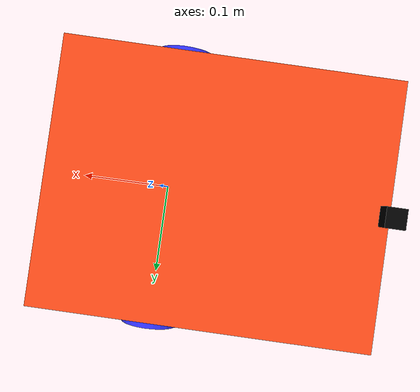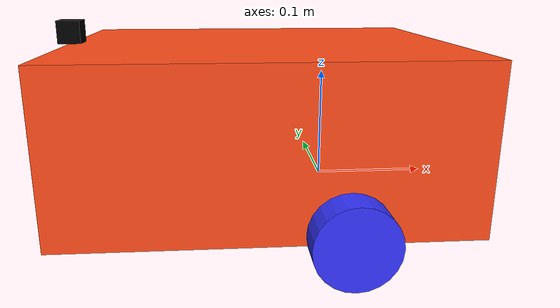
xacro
<?xml version="1.0"?>
<robot xmlns:xacro="http://www.ros.org/wiki/xacro">

    <xacro:include filename="inertial_macros.xacro"/>

    <xacro:property name="chassis_length" value="0.335"/>
    <xacro:property name="chassis_width" value="0.265"/>
    <xacro:property name="chassis_height" value="0.138"/>
    <xacro:property name="chassis_mass" value="1.0"/>
    <xacro:property name="wheel_radius" value="0.033"/>
    <xacro:property name="wheel_thickness" value="0.026"/>
    <xacro:property name="wheel_mass" value="0.05"/>
    <xacro:property name="wheel_offset_x" value="0.226"/>
    <xacro:property name="wheel_offset_y" value="0.1485"/>
    <xacro:property name="wheel_offset_z" value="0.01"/>
    <xacro:property name="caster_wheel_radius" value="0.01"/>
    <xacro:property name="caster_wheel_mass" value="0.01"/>
    <xacro:property name="caster_wheel_offset_x" value="0.075"/>
    <xacro:property name="caster_wheel_offset_z" value="${wheel_offset_z - wheel_radius + caster_wheel_radius}"/>

    <material name="white">
        <color rgba="1 1 1 1" />
    </material>

    <material name="orange">
        <color rgba="1 0.3 0.1 1"/>
    </material>

    <material name="blue">
        <color rgba="0.2 0.2 1 1"/>
    </material>

    <material name="black">
        <color rgba="0 0 0 1"/>
    </material>

    <material name="red">
        <color rgba="1 0 0 1"/>
    </material>

    <!-- BASE LINK -->

    <link name="base_link">

    </link>

    <!-- BASE_FOOTPRINT LINK -->

    <joint name="base_footprint_joint" type="fixed">
        <parent link="base_link"/>
        <child link="base_footprint"/>
        <origin xyz="0 0 0" rpy="0 0 0"/>
    </joint>

    <link name="base_footprint">
    </link>

    <!-- CHASSIS LINK -->

    <joint name="chassis_joint" type="fixed">
        <parent link="base_link"/>
        <child link="chassis"/>
        <origin xyz="${-wheel_offset_x} 0 ${-wheel_offset_z}"/>
    </joint>

    <link name="chassis">
        <visual>
            <origin xyz="${chassis_length/2} 0 ${chassis_height/2}"/>
            <geometry>
                <box size="${chassis_length} ${chassis_width} ${chassis_height}"/>
            </geometry>
            <material name="orange"/>
        </visual>
        <collision>
            <origin xyz="${chassis_length/2} 0 ${chassis_height/2}"/>
            <geometry>
                <box size="${chassis_length} ${chassis_width} ${chassis_height}"/>
            </geometry>
        </collision>
        <xacro:inertial_box mass="0.5" x="${chassis_length}" y="${chassis_width}" z="${chassis_height}">
            <origin xyz="${chassis_length/2} 0 ${chassis_height/2}" rpy="0 0 0"/>
        </xacro:inertial_box>
    </link>

    <gazebo reference="chassis">
        <material>Gazebo/Orange</material>
    </gazebo>

    <!-- IMU LINK -->
    <joint name="imu_joint" type="fixed">
        <parent link="chassis"/>
        <child link="imu_link"/>
        <origin xyz="0 0 0.148" rpy="0 0 0"/>
    </joint>

    <gazebo reference="imu_joint">
        <disableFixedJointLumping>true</disableFixedJointLumping>
    </gazebo>

    <link name="imu_link">
        <visual>
            <geometry>
                <box size="0.02 0.02 0.02"/>
            </geometry>
            <material name="black"/>
        </visual>
        <collision>
            <geometry>
                <box size="0.02 0.02 0.02"/>
            </geometry>
        </collision>
        <xacro:inertial_box mass="0.01" x="0.02" y="0.02" z="0.02">
            <origin xyz="0 0 0" rpy="0 0 0"/>
        </xacro:inertial_box>
    </link>

    <gazebo reference="imu_link">
        <material>Gazebo/Black</material>
        <sensor name="imu_sensor" type="imu">
            <always_on>true</always_on>
            <update_rate>50</update_rate>
            <visualize>false</visualize>
            <imu>
                <angular_velocity>
                    <x>
                        <noise type="gaussian">
                            <mean>0.0</mean>
                            <stddev>0.0002</stddev>
                            <bias_mean>0.0000075</bias_mean>
                            <bias_stddev>0.0000008</bias_stddev>
                        </noise>
                    </x>
                    <y>
                        <noise type="gaussian">
                            <mean>0.0</mean>
                            <stddev>0.0002</stddev>
                            <bias_mean>0.0000075</bias_mean>
                            <bias_stddev>0.0000008</bias_stddev>
                        </noise>
                    </y>
                    <z>
                        <noise type="gaussian">
                            <mean>0.0</mean>
                            <stddev>0.0002</stddev>
                            <bias_mean>0.0000075</bias_mean>
                            <bias_stddev>0.0000008</bias_stddev>
                        </noise>
                    </z>
                </angular_velocity>
                <linear_acceleration>
                    <x>
                        <noise type="gaussian">
                            <mean>0.0</mean>
                            <stddev>0.017</stddev>
                            <bias_mean>0.1</bias_mean>
                            <bias_stddev>0.001</bias_stddev>
                        </noise>
                    </x>
                    <y>
                        <noise type="gaussian">
                            <mean>0.0</mean>
                            <stddev>0.017</stddev>
                            <bias_mean>0.1</bias_mean>
                            <bias_stddev>0.001</bias_stddev>
                        </noise>
                    </y>
                    <z>
                        <noise type="gaussian">
                            <mean>0.0</mean>
                            <stddev>0.017</stddev>
                            <bias_mean>0.1</bias_mean>
                            <bias_stddev>0.001</bias_stddev>
                        </noise>
                    </z>
                </linear_acceleration>
            </imu>
            <xacro:if value="$(arg use_gazebo_classic)">
                <plugin name="imu_plugin" filename="libgazebo_ros_imu_sensor.so">
                    <ros>
                        <remapping>~/out:=imu/data</remapping>
                    </ros>
                    <initial_orientation_as_reference>false</initial_orientation_as_reference>
                </plugin>
            </xacro:if>
            <xacro:unless value="$(arg use_gazebo_classic)">
                <topic>imu_sensor/imu_data</topic>
            </xacro:unless>
        </sensor>
    </gazebo>

    <!-- LEFT WHEEL LINK -->

    <joint name="left_wheel_joint" type="continuous">
        <parent link="base_link"/>
        <child link="left_wheel"/>
        <origin xyz="0 ${wheel_offset_y} 0" rpy="-${pi/2} 0 0" />
        <axis xyz="0 0 1"/>
    </joint>

    <link name="left_wheel">
        <visual>
            <geometry>
                <cylinder radius="${wheel_radius}" length="${wheel_thickness}"/>
            </geometry>
            <material name="blue"/>
        </visual>
        <collision>
            <geometry>
                <sphere radius="${wheel_radius}"/>
            </geometry>
        </collision>
        <xacro:inertial_cylinder mass="${wheel_mass}" length="${wheel_thickness}" radius="${wheel_radius}">
            <origin xyz="0 0 0" rpy="0 0 0"/>
        </xacro:inertial_cylinder>
    </link>

    <gazebo reference="left_wheel">
        <material>Gazebo/Blue</material>
    </gazebo>

    <!-- RIGHT WHEEL LINK -->

    <joint name="right_wheel_joint" type="continuous">
        <parent link="base_link"/>
        <child link="right_wheel"/>
        <origin xyz="0 ${-wheel_offset_y} 0" rpy="${pi/2} 0 0" />
        <axis xyz="0 0 -1"/>
    </joint>

    <link name="right_wheel">
        <visual>
            <geometry>
                <cylinder radius="${wheel_radius}" length="${wheel_thickness}"/>
            </geometry>
            <material name="blue"/>
        </visual>
        <collision>
            <geometry>
                <sphere radius="${wheel_radius}"/>
            </geometry>
        </collision>
        <xacro:inertial_cylinder mass="${wheel_mass}" length="${wheel_thickness}" radius="${wheel_radius}">
            <origin xyz="0 0 0" rpy="0 0 0"/>
        </xacro:inertial_cylinder>
    </link>

    <gazebo reference="right_wheel">
        <material>Gazebo/Blue</material>
    </gazebo>

    <!-- CASTER WHEEL LINK -->

    <joint name="caster_wheel_joint" type="fixed">
        <parent link="chassis"/>
        <child link="caster_wheel"/>
        <origin xyz="${caster_wheel_offset_x} 0 ${caster_wheel_offset_z}"/>
    </joint>

    <link name="caster_wheel">
        <visual>
            <geometry>
                <sphere radius="${caster_wheel_radius}"/>
            </geometry>
            <material name="white"/>
        </visual>
        <collision>
            <geometry>
                <sphere radius="${caster_wheel_radius}"/>
            </geometry>
        </collision>
        <xacro:inertial_sphere mass="${caster_wheel_mass}" radius="${caster_wheel_radius}">
            <origin xyz="0 0 0" rpy="0 0 0"/>
        </xacro:inertial_sphere>
    </link>

    <gazebo reference="caster_wheel">
        <material>Gazebo/White</material>
        <mu1 value="0.001"/>
        <mu2 value="0.001"/>
    </gazebo>

</robot>

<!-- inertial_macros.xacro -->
<robot xmlns:xacro="http://www.ros.org/wiki/xacro" >
    <xacro:macro name="inertial_sphere" params="mass radius *origin">
        <inertial>
            <xacro:insert_block name="origin"/>
            <mass value="${mass}" />
            <inertia ixx="${(2/5) * mass * (radius*radius)}" ixy="0.0" ixz="0.0"
                    iyy="${(2/5) * mass * (radius*radius)}" iyz="0.0"
                    izz="${(2/5) * mass * (radius*radius)}" />
        </inertial>
    </xacro:macro>
    <xacro:macro name="inertial_box" params="mass x y z *origin">
        <inertial>
            <xacro:insert_block name="origin"/>
            <mass value="${mass}" />
            <inertia ixx="${(1/12) * mass * (y*y+z*z)}" ixy="0.0" ixz="0.0"
                    iyy="${(1/12) * mass * (x*x+z*z)}" iyz="0.0"
                    izz="${(1/12) * mass * (x*x+y*y)}" />
        </inertial>
    </xacro:macro>
    <xacro:macro name="inertial_cylinder" params="mass length radius *origin">
        <inertial>
            <xacro:insert_block name="origin"/>
            <mass value="${mass}" />
            <inertia ixx="${(1/12) * mass * (3*radius*radius + length*length)}" ixy="0.0" ixz="0.0"
                    iyy="${(1/12) * mass * (3*radius*radius + length*length)}" iyz="0.0"
                    izz="${(1/2) * mass * (radius*radius)}" />
        </inertial>
    </xacro:macro>
</robot>
